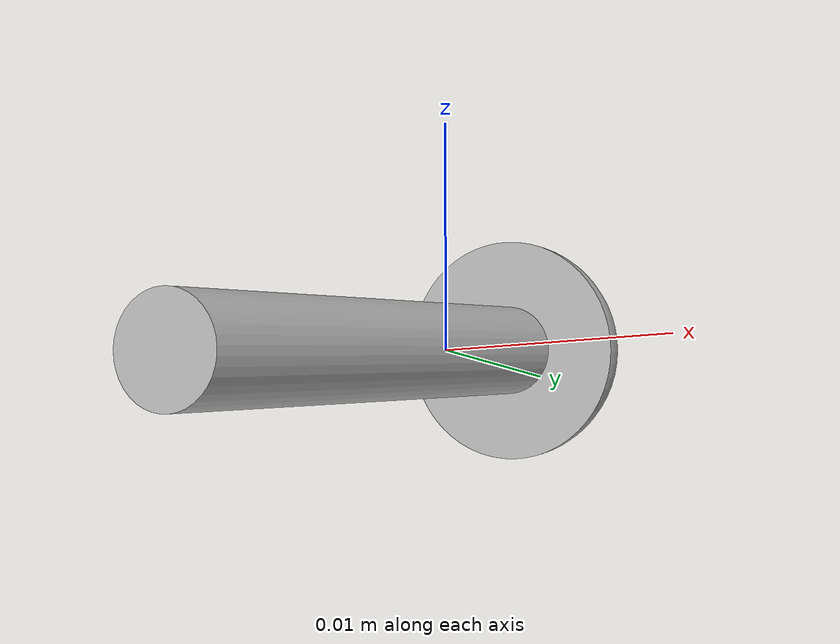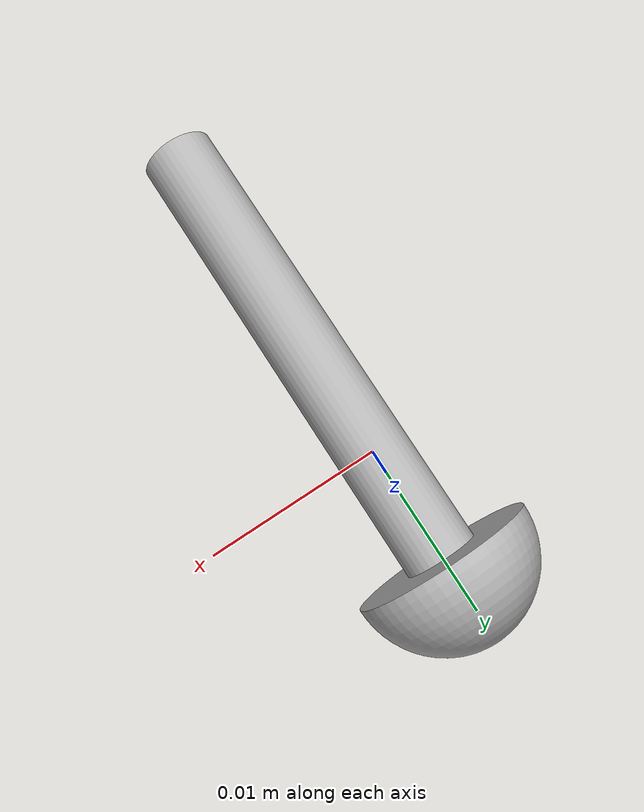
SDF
<?xml version="1.0" ?>
<sdf version="1.6">
  <model name="13)Wheel Axle.001">
    <static>true</static>
    <link name="link">
      <collision name="collision">
        <geometry>
          <mesh>
            <scale>0.001 0.001 0.001</scale>
            <uri>model://13)Wheel Axle.001/13)Wheel Axle.001.stl</uri>
          </mesh>
        </geometry>
      </collision>
      <visual name="visual">
        <geometry>
          <mesh>
            <scale>0.001 0.001 0.001</scale>
            <uri>model://13)Wheel Axle.001/13)Wheel Axle.001.dae</uri>
          </mesh>
        </geometry>
      </visual>
    </link>
  </model>
</sdf>
